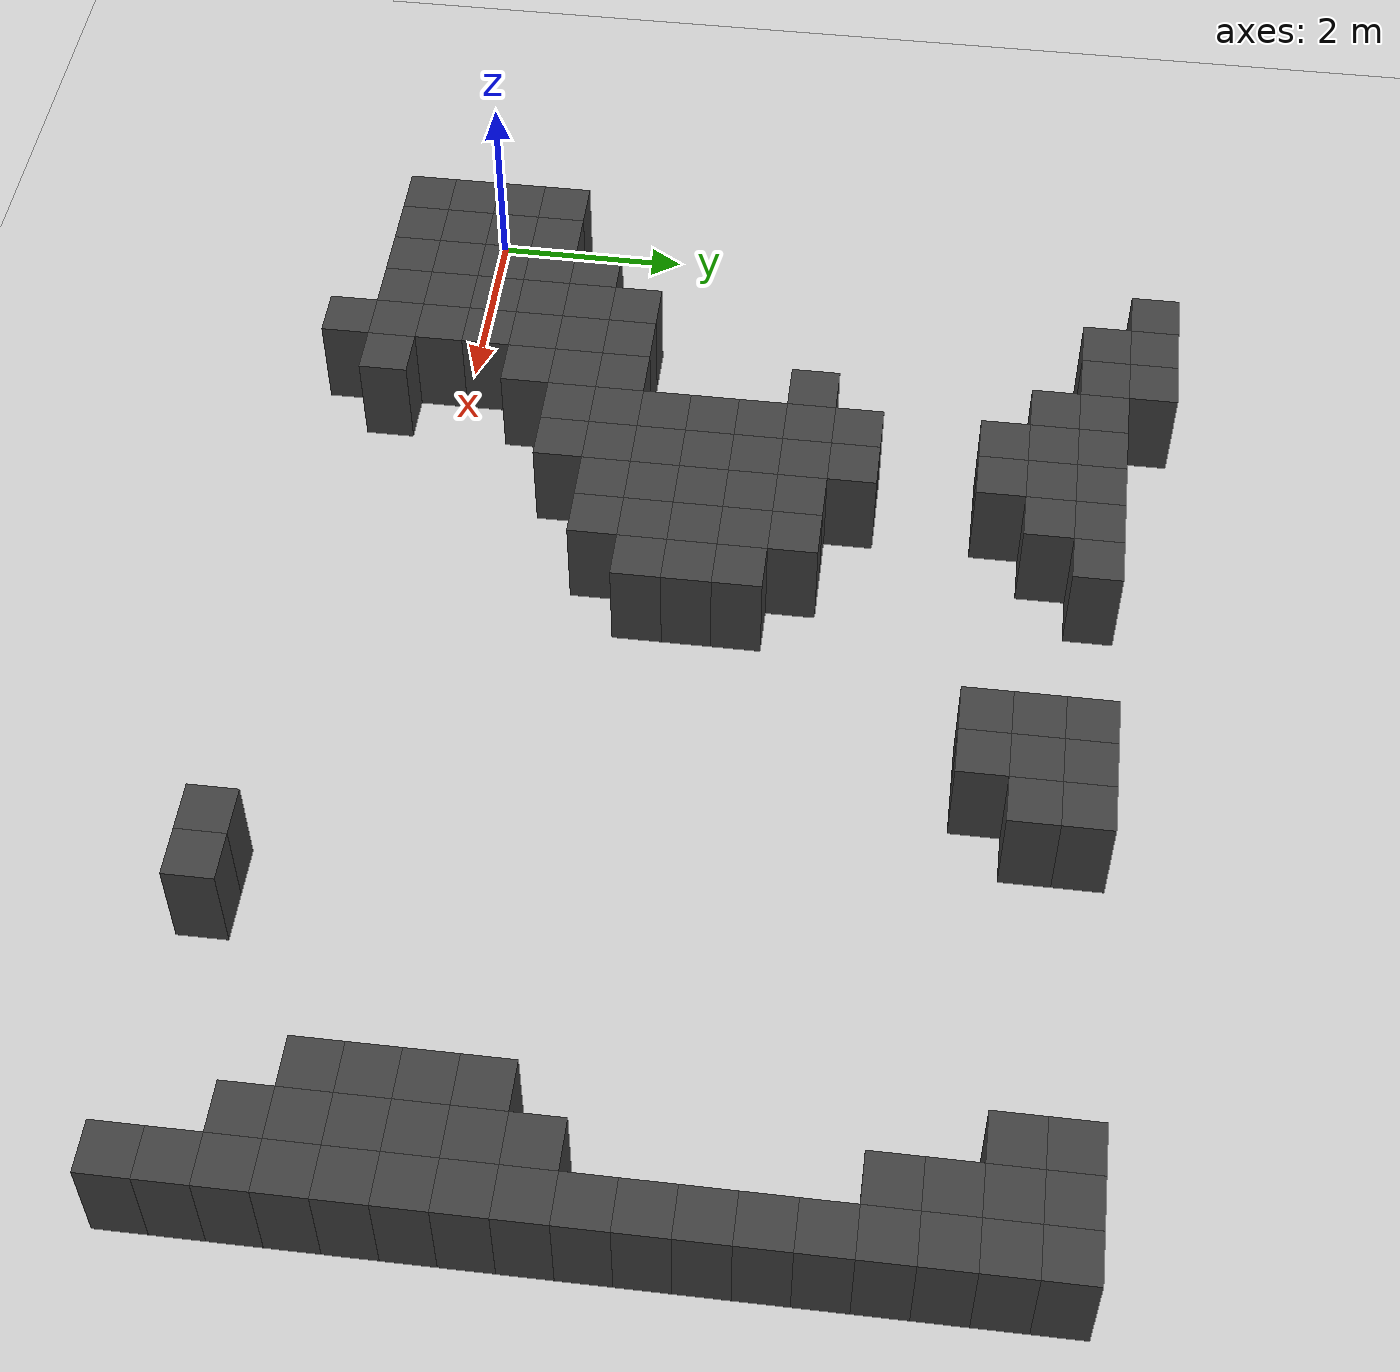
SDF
<sdf version="1.7">
 <world name="map_9061">
  <model name="ground_plane">
   <static>true</static>
   <link name="link">
    <collision name="collision">
     <geometry><plane><normal>0 0 1</normal><size>200 200</size></plane></geometry>
    </collision>
    <visual name="visual">
     <geometry><plane><normal>0 0 1</normal><size>200 200</size></plane></geometry>
     <material><ambient>0.8 0.8 0.8 1</ambient><diffuse>0.8 0.8 0.8 1</diffuse></material>
    </visual>
   </link>
  </model>
  <model name="maze_environment">
   <static>true</static>
   <link name="wall_192">
    <pose>1.250 7.250 0.500 0 0 0</pose>
    <collision name="col"><geometry><box><size>0.5 0.5 1.0</size></box></geometry></collision>
    <visual name="vis">
     <geometry><box><size>0.5 0.5 1.0</size></box></geometry>
     <material><ambient>0.15 0.15 0.15 1</ambient><diffuse>0.25 0.25 0.25 1</diffuse></material>
    </visual>
   </link>
   <link name="wall_193">
    <pose>1.750 7.250 0.500 0 0 0</pose>
    <collision name="col"><geometry><box><size>0.5 0.5 1.0</size></box></geometry></collision>
    <visual name="vis">
     <geometry><box><size>0.5 0.5 1.0</size></box></geometry>
     <material><ambient>0.15 0.15 0.15 1</ambient><diffuse>0.25 0.25 0.25 1</diffuse></material>
    </visual>
   </link>
   <link name="wall_194">
    <pose>2.250 7.250 0.500 0 0 0</pose>
    <collision name="col"><geometry><box><size>0.5 0.5 1.0</size></box></geometry></collision>
    <visual name="vis">
     <geometry><box><size>0.5 0.5 1.0</size></box></geometry>
     <material><ambient>0.15 0.15 0.15 1</ambient><diffuse>0.25 0.25 0.25 1</diffuse></material>
    </visual>
   </link>
   <link name="wall_206">
    <pose>1.750 6.750 0.500 0 0 0</pose>
    <collision name="col"><geometry><box><size>0.5 0.5 1.0</size></box></geometry></collision>
    <visual name="vis">
     <geometry><box><size>0.5 0.5 1.0</size></box></geometry>
     <material><ambient>0.15 0.15 0.15 1</ambient><diffuse>0.25 0.25 0.25 1</diffuse></material>
    </visual>
   </link>
   <link name="wall_207">
    <pose>2.250 6.750 0.500 0 0 0</pose>
    <collision name="col"><geometry><box><size>0.5 0.5 1.0</size></box></geometry></collision>
    <visual name="vis">
     <geometry><box><size>0.5 0.5 1.0</size></box></geometry>
     <material><ambient>0.15 0.15 0.15 1</ambient><diffuse>0.25 0.25 0.25 1</diffuse></material>
    </visual>
   </link>
   <link name="wall_208">
    <pose>2.750 6.750 0.500 0 0 0</pose>
    <collision name="col"><geometry><box><size>0.5 0.5 1.0</size></box></geometry></collision>
    <visual name="vis">
     <geometry><box><size>0.5 0.5 1.0</size></box></geometry>
     <material><ambient>0.15 0.15 0.15 1</ambient><diffuse>0.25 0.25 0.25 1</diffuse></material>
    </visual>
   </link>
   <link name="wall_209">
    <pose>3.250 6.750 0.500 0 0 0</pose>
    <collision name="col"><geometry><box><size>0.5 0.5 1.0</size></box></geometry></collision>
    <visual name="vis">
     <geometry><box><size>0.5 0.5 1.0</size></box></geometry>
     <material><ambient>0.15 0.15 0.15 1</ambient><diffuse>0.25 0.25 0.25 1</diffuse></material>
    </visual>
   </link>
   <link name="wall_210">
    <pose>3.750 6.750 0.500 0 0 0</pose>
    <collision name="col"><geometry><box><size>0.5 0.5 1.0</size></box></geometry></collision>
    <visual name="vis">
     <geometry><box><size>0.5 0.5 1.0</size></box></geometry>
     <material><ambient>0.15 0.15 0.15 1</ambient><diffuse>0.25 0.25 0.25 1</diffuse></material>
    </visual>
   </link>
   <link name="wall_211">
    <pose>4.250 6.750 0.500 0 0 0</pose>
    <collision name="col"><geometry><box><size>0.5 0.5 1.0</size></box></geometry></collision>
    <visual name="vis">
     <geometry><box><size>0.5 0.5 1.0</size></box></geometry>
     <material><ambient>0.15 0.15 0.15 1</ambient><diffuse>0.25 0.25 0.25 1</diffuse></material>
    </visual>
   </link>
   <link name="wall_212">
    <pose>4.750 6.750 0.500 0 0 0</pose>
    <collision name="col"><geometry><box><size>0.5 0.5 1.0</size></box></geometry></collision>
    <visual name="vis">
     <geometry><box><size>0.5 0.5 1.0</size></box></geometry>
     <material><ambient>0.15 0.15 0.15 1</ambient><diffuse>0.25 0.25 0.25 1</diffuse></material>
    </visual>
   </link>
   <link name="wall_213">
    <pose>6.750 6.750 0.500 0 0 0</pose>
    <collision name="col"><geometry><box><size>0.5 0.5 1.0</size></box></geometry></collision>
    <visual name="vis">
     <geometry><box><size>0.5 0.5 1.0</size></box></geometry>
     <material><ambient>0.15 0.15 0.15 1</ambient><diffuse>0.25 0.25 0.25 1</diffuse></material>
    </visual>
   </link>
   <link name="wall_214">
    <pose>7.250 6.750 0.500 0 0 0</pose>
    <collision name="col"><geometry><box><size>0.5 0.5 1.0</size></box></geometry></collision>
    <visual name="vis">
     <geometry><box><size>0.5 0.5 1.0</size></box></geometry>
     <material><ambient>0.15 0.15 0.15 1</ambient><diffuse>0.25 0.25 0.25 1</diffuse></material>
    </visual>
   </link>
   <link name="wall_215">
    <pose>7.750 6.750 0.500 0 0 0</pose>
    <collision name="col"><geometry><box><size>0.5 0.5 1.0</size></box></geometry></collision>
    <visual name="vis">
     <geometry><box><size>0.5 0.5 1.0</size></box></geometry>
     <material><ambient>0.15 0.15 0.15 1</ambient><diffuse>0.25 0.25 0.25 1</diffuse></material>
    </visual>
   </link>
   <link name="wall_216">
    <pose>11.250 6.750 0.500 0 0 0</pose>
    <collision name="col"><geometry><box><size>0.5 0.5 1.0</size></box></geometry></collision>
    <visual name="vis">
     <geometry><box><size>0.5 0.5 1.0</size></box></geometry>
     <material><ambient>0.15 0.15 0.15 1</ambient><diffuse>0.25 0.25 0.25 1</diffuse></material>
    </visual>
   </link>
   <link name="wall_217">
    <pose>11.750 6.750 0.500 0 0 0</pose>
    <collision name="col"><geometry><box><size>0.5 0.5 1.0</size></box></geometry></collision>
    <visual name="vis">
     <geometry><box><size>0.5 0.5 1.0</size></box></geometry>
     <material><ambient>0.15 0.15 0.15 1</ambient><diffuse>0.25 0.25 0.25 1</diffuse></material>
    </visual>
   </link>
   <link name="wall_218">
    <pose>12.250 6.750 0.500 0 0 0</pose>
    <collision name="col"><geometry><box><size>0.5 0.5 1.0</size></box></geometry></collision>
    <visual name="vis">
     <geometry><box><size>0.5 0.5 1.0</size></box></geometry>
     <material><ambient>0.15 0.15 0.15 1</ambient><diffuse>0.25 0.25 0.25 1</diffuse></material>
    </visual>
   </link>
   <link name="wall_223">
    <pose>2.750 6.250 0.500 0 0 0</pose>
    <collision name="col"><geometry><box><size>0.5 0.5 1.0</size></box></geometry></collision>
    <visual name="vis">
     <geometry><box><size>0.5 0.5 1.0</size></box></geometry>
     <material><ambient>0.15 0.15 0.15 1</ambient><diffuse>0.25 0.25 0.25 1</diffuse></material>
    </visual>
   </link>
   <link name="wall_224">
    <pose>3.250 6.250 0.500 0 0 0</pose>
    <collision name="col"><geometry><box><size>0.5 0.5 1.0</size></box></geometry></collision>
    <visual name="vis">
     <geometry><box><size>0.5 0.5 1.0</size></box></geometry>
     <material><ambient>0.15 0.15 0.15 1</ambient><diffuse>0.25 0.25 0.25 1</diffuse></material>
    </visual>
   </link>
   <link name="wall_225">
    <pose>3.750 6.250 0.500 0 0 0</pose>
    <collision name="col"><geometry><box><size>0.5 0.5 1.0</size></box></geometry></collision>
    <visual name="vis">
     <geometry><box><size>0.5 0.5 1.0</size></box></geometry>
     <material><ambient>0.15 0.15 0.15 1</ambient><diffuse>0.25 0.25 0.25 1</diffuse></material>
    </visual>
   </link>
   <link name="wall_226">
    <pose>4.250 6.250 0.500 0 0 0</pose>
    <collision name="col"><geometry><box><size>0.5 0.5 1.0</size></box></geometry></collision>
    <visual name="vis">
     <geometry><box><size>0.5 0.5 1.0</size></box></geometry>
     <material><ambient>0.15 0.15 0.15 1</ambient><diffuse>0.25 0.25 0.25 1</diffuse></material>
    </visual>
   </link>
   <link name="wall_227">
    <pose>6.750 6.250 0.500 0 0 0</pose>
    <collision name="col"><geometry><box><size>0.5 0.5 1.0</size></box></geometry></collision>
    <visual name="vis">
     <geometry><box><size>0.5 0.5 1.0</size></box></geometry>
     <material><ambient>0.15 0.15 0.15 1</ambient><diffuse>0.25 0.25 0.25 1</diffuse></material>
    </visual>
   </link>
   <link name="wall_228">
    <pose>7.250 6.250 0.500 0 0 0</pose>
    <collision name="col"><geometry><box><size>0.5 0.5 1.0</size></box></geometry></collision>
    <visual name="vis">
     <geometry><box><size>0.5 0.5 1.0</size></box></geometry>
     <material><ambient>0.15 0.15 0.15 1</ambient><diffuse>0.25 0.25 0.25 1</diffuse></material>
    </visual>
   </link>
   <link name="wall_229">
    <pose>7.750 6.250 0.500 0 0 0</pose>
    <collision name="col"><geometry><box><size>0.5 0.5 1.0</size></box></geometry></collision>
    <visual name="vis">
     <geometry><box><size>0.5 0.5 1.0</size></box></geometry>
     <material><ambient>0.15 0.15 0.15 1</ambient><diffuse>0.25 0.25 0.25 1</diffuse></material>
    </visual>
   </link>
   <link name="wall_230">
    <pose>11.250 6.250 0.500 0 0 0</pose>
    <collision name="col"><geometry><box><size>0.5 0.5 1.0</size></box></geometry></collision>
    <visual name="vis">
     <geometry><box><size>0.5 0.5 1.0</size></box></geometry>
     <material><ambient>0.15 0.15 0.15 1</ambient><diffuse>0.25 0.25 0.25 1</diffuse></material>
    </visual>
   </link>
   <link name="wall_231">
    <pose>11.750 6.250 0.500 0 0 0</pose>
    <collision name="col"><geometry><box><size>0.5 0.5 1.0</size></box></geometry></collision>
    <visual name="vis">
     <geometry><box><size>0.5 0.5 1.0</size></box></geometry>
     <material><ambient>0.15 0.15 0.15 1</ambient><diffuse>0.25 0.25 0.25 1</diffuse></material>
    </visual>
   </link>
   <link name="wall_232">
    <pose>12.250 6.250 0.500 0 0 0</pose>
    <collision name="col"><geometry><box><size>0.5 0.5 1.0</size></box></geometry></collision>
    <visual name="vis">
     <geometry><box><size>0.5 0.5 1.0</size></box></geometry>
     <material><ambient>0.15 0.15 0.15 1</ambient><diffuse>0.25 0.25 0.25 1</diffuse></material>
    </visual>
   </link>
   <link name="wall_238">
    <pose>3.250 5.750 0.500 0 0 0</pose>
    <collision name="col"><geometry><box><size>0.5 0.5 1.0</size></box></geometry></collision>
    <visual name="vis">
     <geometry><box><size>0.5 0.5 1.0</size></box></geometry>
     <material><ambient>0.15 0.15 0.15 1</ambient><diffuse>0.25 0.25 0.25 1</diffuse></material>
    </visual>
   </link>
   <link name="wall_239">
    <pose>3.750 5.750 0.500 0 0 0</pose>
    <collision name="col"><geometry><box><size>0.5 0.5 1.0</size></box></geometry></collision>
    <visual name="vis">
     <geometry><box><size>0.5 0.5 1.0</size></box></geometry>
     <material><ambient>0.15 0.15 0.15 1</ambient><diffuse>0.25 0.25 0.25 1</diffuse></material>
    </visual>
   </link>
   <link name="wall_240">
    <pose>6.750 5.750 0.500 0 0 0</pose>
    <collision name="col"><geometry><box><size>0.5 0.5 1.0</size></box></geometry></collision>
    <visual name="vis">
     <geometry><box><size>0.5 0.5 1.0</size></box></geometry>
     <material><ambient>0.15 0.15 0.15 1</ambient><diffuse>0.25 0.25 0.25 1</diffuse></material>
    </visual>
   </link>
   <link name="wall_241">
    <pose>7.250 5.750 0.500 0 0 0</pose>
    <collision name="col"><geometry><box><size>0.5 0.5 1.0</size></box></geometry></collision>
    <visual name="vis">
     <geometry><box><size>0.5 0.5 1.0</size></box></geometry>
     <material><ambient>0.15 0.15 0.15 1</ambient><diffuse>0.25 0.25 0.25 1</diffuse></material>
    </visual>
   </link>
   <link name="wall_242">
    <pose>11.750 5.750 0.500 0 0 0</pose>
    <collision name="col"><geometry><box><size>0.5 0.5 1.0</size></box></geometry></collision>
    <visual name="vis">
     <geometry><box><size>0.5 0.5 1.0</size></box></geometry>
     <material><ambient>0.15 0.15 0.15 1</ambient><diffuse>0.25 0.25 0.25 1</diffuse></material>
    </visual>
   </link>
   <link name="wall_243">
    <pose>12.250 5.750 0.500 0 0 0</pose>
    <collision name="col"><geometry><box><size>0.5 0.5 1.0</size></box></geometry></collision>
    <visual name="vis">
     <geometry><box><size>0.5 0.5 1.0</size></box></geometry>
     <material><ambient>0.15 0.15 0.15 1</ambient><diffuse>0.25 0.25 0.25 1</diffuse></material>
    </visual>
   </link>
   <link name="wall_248">
    <pose>11.750 5.250 0.500 0 0 0</pose>
    <collision name="col"><geometry><box><size>0.5 0.5 1.0</size></box></geometry></collision>
    <visual name="vis">
     <geometry><box><size>0.5 0.5 1.0</size></box></geometry>
     <material><ambient>0.15 0.15 0.15 1</ambient><diffuse>0.25 0.25 0.25 1</diffuse></material>
    </visual>
   </link>
   <link name="wall_249">
    <pose>12.250 5.250 0.500 0 0 0</pose>
    <collision name="col"><geometry><box><size>0.5 0.5 1.0</size></box></geometry></collision>
    <visual name="vis">
     <geometry><box><size>0.5 0.5 1.0</size></box></geometry>
     <material><ambient>0.15 0.15 0.15 1</ambient><diffuse>0.25 0.25 0.25 1</diffuse></material>
    </visual>
   </link>
   <link name="wall_252">
    <pose>12.250 4.750 0.500 0 0 0</pose>
    <collision name="col"><geometry><box><size>0.5 0.5 1.0</size></box></geometry></collision>
    <visual name="vis">
     <geometry><box><size>0.5 0.5 1.0</size></box></geometry>
     <material><ambient>0.15 0.15 0.15 1</ambient><diffuse>0.25 0.25 0.25 1</diffuse></material>
    </visual>
   </link>
   <link name="wall_256">
    <pose>3.250 4.250 0.500 0 0 0</pose>
    <collision name="col"><geometry><box><size>0.5 0.5 1.0</size></box></geometry></collision>
    <visual name="vis">
     <geometry><box><size>0.5 0.5 1.0</size></box></geometry>
     <material><ambient>0.15 0.15 0.15 1</ambient><diffuse>0.25 0.25 0.25 1</diffuse></material>
    </visual>
   </link>
   <link name="wall_257">
    <pose>3.750 4.250 0.500 0 0 0</pose>
    <collision name="col"><geometry><box><size>0.5 0.5 1.0</size></box></geometry></collision>
    <visual name="vis">
     <geometry><box><size>0.5 0.5 1.0</size></box></geometry>
     <material><ambient>0.15 0.15 0.15 1</ambient><diffuse>0.25 0.25 0.25 1</diffuse></material>
    </visual>
   </link>
   <link name="wall_258">
    <pose>12.250 4.250 0.500 0 0 0</pose>
    <collision name="col"><geometry><box><size>0.5 0.5 1.0</size></box></geometry></collision>
    <visual name="vis">
     <geometry><box><size>0.5 0.5 1.0</size></box></geometry>
     <material><ambient>0.15 0.15 0.15 1</ambient><diffuse>0.25 0.25 0.25 1</diffuse></material>
    </visual>
   </link>
   <link name="wall_267">
    <pose>2.750 3.750 0.500 0 0 0</pose>
    <collision name="col"><geometry><box><size>0.5 0.5 1.0</size></box></geometry></collision>
    <visual name="vis">
     <geometry><box><size>0.5 0.5 1.0</size></box></geometry>
     <material><ambient>0.15 0.15 0.15 1</ambient><diffuse>0.25 0.25 0.25 1</diffuse></material>
    </visual>
   </link>
   <link name="wall_268">
    <pose>3.250 3.750 0.500 0 0 0</pose>
    <collision name="col"><geometry><box><size>0.5 0.5 1.0</size></box></geometry></collision>
    <visual name="vis">
     <geometry><box><size>0.5 0.5 1.0</size></box></geometry>
     <material><ambient>0.15 0.15 0.15 1</ambient><diffuse>0.25 0.25 0.25 1</diffuse></material>
    </visual>
   </link>
   <link name="wall_269">
    <pose>3.750 3.750 0.500 0 0 0</pose>
    <collision name="col"><geometry><box><size>0.5 0.5 1.0</size></box></geometry></collision>
    <visual name="vis">
     <geometry><box><size>0.5 0.5 1.0</size></box></geometry>
     <material><ambient>0.15 0.15 0.15 1</ambient><diffuse>0.25 0.25 0.25 1</diffuse></material>
    </visual>
   </link>
   <link name="wall_270">
    <pose>4.250 3.750 0.500 0 0 0</pose>
    <collision name="col"><geometry><box><size>0.5 0.5 1.0</size></box></geometry></collision>
    <visual name="vis">
     <geometry><box><size>0.5 0.5 1.0</size></box></geometry>
     <material><ambient>0.15 0.15 0.15 1</ambient><diffuse>0.25 0.25 0.25 1</diffuse></material>
    </visual>
   </link>
   <link name="wall_271">
    <pose>4.750 3.750 0.500 0 0 0</pose>
    <collision name="col"><geometry><box><size>0.5 0.5 1.0</size></box></geometry></collision>
    <visual name="vis">
     <geometry><box><size>0.5 0.5 1.0</size></box></geometry>
     <material><ambient>0.15 0.15 0.15 1</ambient><diffuse>0.25 0.25 0.25 1</diffuse></material>
    </visual>
   </link>
   <link name="wall_272">
    <pose>12.250 3.750 0.500 0 0 0</pose>
    <collision name="col"><geometry><box><size>0.5 0.5 1.0</size></box></geometry></collision>
    <visual name="vis">
     <geometry><box><size>0.5 0.5 1.0</size></box></geometry>
     <material><ambient>0.15 0.15 0.15 1</ambient><diffuse>0.25 0.25 0.25 1</diffuse></material>
    </visual>
   </link>
   <link name="wall_286">
    <pose>3.250 3.250 0.500 0 0 0</pose>
    <collision name="col"><geometry><box><size>0.5 0.5 1.0</size></box></geometry></collision>
    <visual name="vis">
     <geometry><box><size>0.5 0.5 1.0</size></box></geometry>
     <material><ambient>0.15 0.15 0.15 1</ambient><diffuse>0.25 0.25 0.25 1</diffuse></material>
    </visual>
   </link>
   <link name="wall_287">
    <pose>3.750 3.250 0.500 0 0 0</pose>
    <collision name="col"><geometry><box><size>0.5 0.5 1.0</size></box></geometry></collision>
    <visual name="vis">
     <geometry><box><size>0.5 0.5 1.0</size></box></geometry>
     <material><ambient>0.15 0.15 0.15 1</ambient><diffuse>0.25 0.25 0.25 1</diffuse></material>
    </visual>
   </link>
   <link name="wall_288">
    <pose>4.250 3.250 0.500 0 0 0</pose>
    <collision name="col"><geometry><box><size>0.5 0.5 1.0</size></box></geometry></collision>
    <visual name="vis">
     <geometry><box><size>0.5 0.5 1.0</size></box></geometry>
     <material><ambient>0.15 0.15 0.15 1</ambient><diffuse>0.25 0.25 0.25 1</diffuse></material>
    </visual>
   </link>
   <link name="wall_289">
    <pose>4.750 3.250 0.500 0 0 0</pose>
    <collision name="col"><geometry><box><size>0.5 0.5 1.0</size></box></geometry></collision>
    <visual name="vis">
     <geometry><box><size>0.5 0.5 1.0</size></box></geometry>
     <material><ambient>0.15 0.15 0.15 1</ambient><diffuse>0.25 0.25 0.25 1</diffuse></material>
    </visual>
   </link>
   <link name="wall_290">
    <pose>5.250 3.250 0.500 0 0 0</pose>
    <collision name="col"><geometry><box><size>0.5 0.5 1.0</size></box></geometry></collision>
    <visual name="vis">
     <geometry><box><size>0.5 0.5 1.0</size></box></geometry>
     <material><ambient>0.15 0.15 0.15 1</ambient><diffuse>0.25 0.25 0.25 1</diffuse></material>
    </visual>
   </link>
   <link name="wall_291">
    <pose>12.250 3.250 0.500 0 0 0</pose>
    <collision name="col"><geometry><box><size>0.5 0.5 1.0</size></box></geometry></collision>
    <visual name="vis">
     <geometry><box><size>0.5 0.5 1.0</size></box></geometry>
     <material><ambient>0.15 0.15 0.15 1</ambient><diffuse>0.25 0.25 0.25 1</diffuse></material>
    </visual>
   </link>
   <link name="wall_307">
    <pose>3.250 2.750 0.500 0 0 0</pose>
    <collision name="col"><geometry><box><size>0.5 0.5 1.0</size></box></geometry></collision>
    <visual name="vis">
     <geometry><box><size>0.5 0.5 1.0</size></box></geometry>
     <material><ambient>0.15 0.15 0.15 1</ambient><diffuse>0.25 0.25 0.25 1</diffuse></material>
    </visual>
   </link>
   <link name="wall_308">
    <pose>3.750 2.750 0.500 0 0 0</pose>
    <collision name="col"><geometry><box><size>0.5 0.5 1.0</size></box></geometry></collision>
    <visual name="vis">
     <geometry><box><size>0.5 0.5 1.0</size></box></geometry>
     <material><ambient>0.15 0.15 0.15 1</ambient><diffuse>0.25 0.25 0.25 1</diffuse></material>
    </visual>
   </link>
   <link name="wall_309">
    <pose>4.250 2.750 0.500 0 0 0</pose>
    <collision name="col"><geometry><box><size>0.5 0.5 1.0</size></box></geometry></collision>
    <visual name="vis">
     <geometry><box><size>0.5 0.5 1.0</size></box></geometry>
     <material><ambient>0.15 0.15 0.15 1</ambient><diffuse>0.25 0.25 0.25 1</diffuse></material>
    </visual>
   </link>
   <link name="wall_310">
    <pose>4.750 2.750 0.500 0 0 0</pose>
    <collision name="col"><geometry><box><size>0.5 0.5 1.0</size></box></geometry></collision>
    <visual name="vis">
     <geometry><box><size>0.5 0.5 1.0</size></box></geometry>
     <material><ambient>0.15 0.15 0.15 1</ambient><diffuse>0.25 0.25 0.25 1</diffuse></material>
    </visual>
   </link>
   <link name="wall_311">
    <pose>5.250 2.750 0.500 0 0 0</pose>
    <collision name="col"><geometry><box><size>0.5 0.5 1.0</size></box></geometry></collision>
    <visual name="vis">
     <geometry><box><size>0.5 0.5 1.0</size></box></geometry>
     <material><ambient>0.15 0.15 0.15 1</ambient><diffuse>0.25 0.25 0.25 1</diffuse></material>
    </visual>
   </link>
   <link name="wall_312">
    <pose>12.250 2.750 0.500 0 0 0</pose>
    <collision name="col"><geometry><box><size>0.5 0.5 1.0</size></box></geometry></collision>
    <visual name="vis">
     <geometry><box><size>0.5 0.5 1.0</size></box></geometry>
     <material><ambient>0.15 0.15 0.15 1</ambient><diffuse>0.25 0.25 0.25 1</diffuse></material>
    </visual>
   </link>
   <link name="wall_327">
    <pose>3.250 2.250 0.500 0 0 0</pose>
    <collision name="col"><geometry><box><size>0.5 0.5 1.0</size></box></geometry></collision>
    <visual name="vis">
     <geometry><box><size>0.5 0.5 1.0</size></box></geometry>
     <material><ambient>0.15 0.15 0.15 1</ambient><diffuse>0.25 0.25 0.25 1</diffuse></material>
    </visual>
   </link>
   <link name="wall_328">
    <pose>3.750 2.250 0.500 0 0 0</pose>
    <collision name="col"><geometry><box><size>0.5 0.5 1.0</size></box></geometry></collision>
    <visual name="vis">
     <geometry><box><size>0.5 0.5 1.0</size></box></geometry>
     <material><ambient>0.15 0.15 0.15 1</ambient><diffuse>0.25 0.25 0.25 1</diffuse></material>
    </visual>
   </link>
   <link name="wall_329">
    <pose>4.250 2.250 0.500 0 0 0</pose>
    <collision name="col"><geometry><box><size>0.5 0.5 1.0</size></box></geometry></collision>
    <visual name="vis">
     <geometry><box><size>0.5 0.5 1.0</size></box></geometry>
     <material><ambient>0.15 0.15 0.15 1</ambient><diffuse>0.25 0.25 0.25 1</diffuse></material>
    </visual>
   </link>
   <link name="wall_330">
    <pose>4.750 2.250 0.500 0 0 0</pose>
    <collision name="col"><geometry><box><size>0.5 0.5 1.0</size></box></geometry></collision>
    <visual name="vis">
     <geometry><box><size>0.5 0.5 1.0</size></box></geometry>
     <material><ambient>0.15 0.15 0.15 1</ambient><diffuse>0.25 0.25 0.25 1</diffuse></material>
    </visual>
   </link>
   <link name="wall_331">
    <pose>5.250 2.250 0.500 0 0 0</pose>
    <collision name="col"><geometry><box><size>0.5 0.5 1.0</size></box></geometry></collision>
    <visual name="vis">
     <geometry><box><size>0.5 0.5 1.0</size></box></geometry>
     <material><ambient>0.15 0.15 0.15 1</ambient><diffuse>0.25 0.25 0.25 1</diffuse></material>
    </visual>
   </link>
   <link name="wall_332">
    <pose>11.750 2.250 0.500 0 0 0</pose>
    <collision name="col"><geometry><box><size>0.5 0.5 1.0</size></box></geometry></collision>
    <visual name="vis">
     <geometry><box><size>0.5 0.5 1.0</size></box></geometry>
     <material><ambient>0.15 0.15 0.15 1</ambient><diffuse>0.25 0.25 0.25 1</diffuse></material>
    </visual>
   </link>
   <link name="wall_333">
    <pose>12.250 2.250 0.500 0 0 0</pose>
    <collision name="col"><geometry><box><size>0.5 0.5 1.0</size></box></geometry></collision>
    <visual name="vis">
     <geometry><box><size>0.5 0.5 1.0</size></box></geometry>
     <material><ambient>0.15 0.15 0.15 1</ambient><diffuse>0.25 0.25 0.25 1</diffuse></material>
    </visual>
   </link>
   <link name="wall_344">
    <pose>1.750 1.750 0.500 0 0 0</pose>
    <collision name="col"><geometry><box><size>0.5 0.5 1.0</size></box></geometry></collision>
    <visual name="vis">
     <geometry><box><size>0.5 0.5 1.0</size></box></geometry>
     <material><ambient>0.15 0.15 0.15 1</ambient><diffuse>0.25 0.25 0.25 1</diffuse></material>
    </visual>
   </link>
   <link name="wall_345">
    <pose>2.250 1.750 0.500 0 0 0</pose>
    <collision name="col"><geometry><box><size>0.5 0.5 1.0</size></box></geometry></collision>
    <visual name="vis">
     <geometry><box><size>0.5 0.5 1.0</size></box></geometry>
     <material><ambient>0.15 0.15 0.15 1</ambient><diffuse>0.25 0.25 0.25 1</diffuse></material>
    </visual>
   </link>
   <link name="wall_346">
    <pose>2.750 1.750 0.500 0 0 0</pose>
    <collision name="col"><geometry><box><size>0.5 0.5 1.0</size></box></geometry></collision>
    <visual name="vis">
     <geometry><box><size>0.5 0.5 1.0</size></box></geometry>
     <material><ambient>0.15 0.15 0.15 1</ambient><diffuse>0.25 0.25 0.25 1</diffuse></material>
    </visual>
   </link>
   <link name="wall_347">
    <pose>3.250 1.750 0.500 0 0 0</pose>
    <collision name="col"><geometry><box><size>0.5 0.5 1.0</size></box></geometry></collision>
    <visual name="vis">
     <geometry><box><size>0.5 0.5 1.0</size></box></geometry>
     <material><ambient>0.15 0.15 0.15 1</ambient><diffuse>0.25 0.25 0.25 1</diffuse></material>
    </visual>
   </link>
   <link name="wall_348">
    <pose>3.750 1.750 0.500 0 0 0</pose>
    <collision name="col"><geometry><box><size>0.5 0.5 1.0</size></box></geometry></collision>
    <visual name="vis">
     <geometry><box><size>0.5 0.5 1.0</size></box></geometry>
     <material><ambient>0.15 0.15 0.15 1</ambient><diffuse>0.25 0.25 0.25 1</diffuse></material>
    </visual>
   </link>
   <link name="wall_349">
    <pose>4.250 1.750 0.500 0 0 0</pose>
    <collision name="col"><geometry><box><size>0.5 0.5 1.0</size></box></geometry></collision>
    <visual name="vis">
     <geometry><box><size>0.5 0.5 1.0</size></box></geometry>
     <material><ambient>0.15 0.15 0.15 1</ambient><diffuse>0.25 0.25 0.25 1</diffuse></material>
    </visual>
   </link>
   <link name="wall_350">
    <pose>4.750 1.750 0.500 0 0 0</pose>
    <collision name="col"><geometry><box><size>0.5 0.5 1.0</size></box></geometry></collision>
    <visual name="vis">
     <geometry><box><size>0.5 0.5 1.0</size></box></geometry>
     <material><ambient>0.15 0.15 0.15 1</ambient><diffuse>0.25 0.25 0.25 1</diffuse></material>
    </visual>
   </link>
   <link name="wall_351">
    <pose>11.250 1.750 0.500 0 0 0</pose>
    <collision name="col"><geometry><box><size>0.5 0.5 1.0</size></box></geometry></collision>
    <visual name="vis">
     <geometry><box><size>0.5 0.5 1.0</size></box></geometry>
     <material><ambient>0.15 0.15 0.15 1</ambient><diffuse>0.25 0.25 0.25 1</diffuse></material>
    </visual>
   </link>
   <link name="wall_352">
    <pose>11.750 1.750 0.500 0 0 0</pose>
    <collision name="col"><geometry><box><size>0.5 0.5 1.0</size></box></geometry></collision>
    <visual name="vis">
     <geometry><box><size>0.5 0.5 1.0</size></box></geometry>
     <material><ambient>0.15 0.15 0.15 1</ambient><diffuse>0.25 0.25 0.25 1</diffuse></material>
    </visual>
   </link>
   <link name="wall_353">
    <pose>12.250 1.750 0.500 0 0 0</pose>
    <collision name="col"><geometry><box><size>0.5 0.5 1.0</size></box></geometry></collision>
    <visual name="vis">
     <geometry><box><size>0.5 0.5 1.0</size></box></geometry>
     <material><ambient>0.15 0.15 0.15 1</ambient><diffuse>0.25 0.25 0.25 1</diffuse></material>
    </visual>
   </link>
   <link name="wall_363">
    <pose>1.250 1.250 0.500 0 0 0</pose>
    <collision name="col"><geometry><box><size>0.5 0.5 1.0</size></box></geometry></collision>
    <visual name="vis">
     <geometry><box><size>0.5 0.5 1.0</size></box></geometry>
     <material><ambient>0.15 0.15 0.15 1</ambient><diffuse>0.25 0.25 0.25 1</diffuse></material>
    </visual>
   </link>
   <link name="wall_364">
    <pose>1.750 1.250 0.500 0 0 0</pose>
    <collision name="col"><geometry><box><size>0.5 0.5 1.0</size></box></geometry></collision>
    <visual name="vis">
     <geometry><box><size>0.5 0.5 1.0</size></box></geometry>
     <material><ambient>0.15 0.15 0.15 1</ambient><diffuse>0.25 0.25 0.25 1</diffuse></material>
    </visual>
   </link>
   <link name="wall_365">
    <pose>2.250 1.250 0.500 0 0 0</pose>
    <collision name="col"><geometry><box><size>0.5 0.5 1.0</size></box></geometry></collision>
    <visual name="vis">
     <geometry><box><size>0.5 0.5 1.0</size></box></geometry>
     <material><ambient>0.15 0.15 0.15 1</ambient><diffuse>0.25 0.25 0.25 1</diffuse></material>
    </visual>
   </link>
   <link name="wall_366">
    <pose>2.750 1.250 0.500 0 0 0</pose>
    <collision name="col"><geometry><box><size>0.5 0.5 1.0</size></box></geometry></collision>
    <visual name="vis">
     <geometry><box><size>0.5 0.5 1.0</size></box></geometry>
     <material><ambient>0.15 0.15 0.15 1</ambient><diffuse>0.25 0.25 0.25 1</diffuse></material>
    </visual>
   </link>
   <link name="wall_367">
    <pose>3.250 1.250 0.500 0 0 0</pose>
    <collision name="col"><geometry><box><size>0.5 0.5 1.0</size></box></geometry></collision>
    <visual name="vis">
     <geometry><box><size>0.5 0.5 1.0</size></box></geometry>
     <material><ambient>0.15 0.15 0.15 1</ambient><diffuse>0.25 0.25 0.25 1</diffuse></material>
    </visual>
   </link>
   <link name="wall_368">
    <pose>3.750 1.250 0.500 0 0 0</pose>
    <collision name="col"><geometry><box><size>0.5 0.5 1.0</size></box></geometry></collision>
    <visual name="vis">
     <geometry><box><size>0.5 0.5 1.0</size></box></geometry>
     <material><ambient>0.15 0.15 0.15 1</ambient><diffuse>0.25 0.25 0.25 1</diffuse></material>
    </visual>
   </link>
   <link name="wall_369">
    <pose>11.250 1.250 0.500 0 0 0</pose>
    <collision name="col"><geometry><box><size>0.5 0.5 1.0</size></box></geometry></collision>
    <visual name="vis">
     <geometry><box><size>0.5 0.5 1.0</size></box></geometry>
     <material><ambient>0.15 0.15 0.15 1</ambient><diffuse>0.25 0.25 0.25 1</diffuse></material>
    </visual>
   </link>
   <link name="wall_370">
    <pose>11.750 1.250 0.500 0 0 0</pose>
    <collision name="col"><geometry><box><size>0.5 0.5 1.0</size></box></geometry></collision>
    <visual name="vis">
     <geometry><box><size>0.5 0.5 1.0</size></box></geometry>
     <material><ambient>0.15 0.15 0.15 1</ambient><diffuse>0.25 0.25 0.25 1</diffuse></material>
    </visual>
   </link>
   <link name="wall_371">
    <pose>12.250 1.250 0.500 0 0 0</pose>
    <collision name="col"><geometry><box><size>0.5 0.5 1.0</size></box></geometry></collision>
    <visual name="vis">
     <geometry><box><size>0.5 0.5 1.0</size></box></geometry>
     <material><ambient>0.15 0.15 0.15 1</ambient><diffuse>0.25 0.25 0.25 1</diffuse></material>
    </visual>
   </link>
   <link name="wall_382">
    <pose>0.250 0.750 0.500 0 0 0</pose>
    <collision name="col"><geometry><box><size>0.5 0.5 1.0</size></box></geometry></collision>
    <visual name="vis">
     <geometry><box><size>0.5 0.5 1.0</size></box></geometry>
     <material><ambient>0.15 0.15 0.15 1</ambient><diffuse>0.25 0.25 0.25 1</diffuse></material>
    </visual>
   </link>
   <link name="wall_383">
    <pose>0.750 0.750 0.500 0 0 0</pose>
    <collision name="col"><geometry><box><size>0.5 0.5 1.0</size></box></geometry></collision>
    <visual name="vis">
     <geometry><box><size>0.5 0.5 1.0</size></box></geometry>
     <material><ambient>0.15 0.15 0.15 1</ambient><diffuse>0.25 0.25 0.25 1</diffuse></material>
    </visual>
   </link>
   <link name="wall_384">
    <pose>1.250 0.750 0.500 0 0 0</pose>
    <collision name="col"><geometry><box><size>0.5 0.5 1.0</size></box></geometry></collision>
    <visual name="vis">
     <geometry><box><size>0.5 0.5 1.0</size></box></geometry>
     <material><ambient>0.15 0.15 0.15 1</ambient><diffuse>0.25 0.25 0.25 1</diffuse></material>
    </visual>
   </link>
   <link name="wall_385">
    <pose>1.750 0.750 0.500 0 0 0</pose>
    <collision name="col"><geometry><box><size>0.5 0.5 1.0</size></box></geometry></collision>
    <visual name="vis">
     <geometry><box><size>0.5 0.5 1.0</size></box></geometry>
     <material><ambient>0.15 0.15 0.15 1</ambient><diffuse>0.25 0.25 0.25 1</diffuse></material>
    </visual>
   </link>
   <link name="wall_386">
    <pose>2.250 0.750 0.500 0 0 0</pose>
    <collision name="col"><geometry><box><size>0.5 0.5 1.0</size></box></geometry></collision>
    <visual name="vis">
     <geometry><box><size>0.5 0.5 1.0</size></box></geometry>
     <material><ambient>0.15 0.15 0.15 1</ambient><diffuse>0.25 0.25 0.25 1</diffuse></material>
    </visual>
   </link>
   <link name="wall_387">
    <pose>2.750 0.750 0.500 0 0 0</pose>
    <collision name="col"><geometry><box><size>0.5 0.5 1.0</size></box></geometry></collision>
    <visual name="vis">
     <geometry><box><size>0.5 0.5 1.0</size></box></geometry>
     <material><ambient>0.15 0.15 0.15 1</ambient><diffuse>0.25 0.25 0.25 1</diffuse></material>
    </visual>
   </link>
   <link name="wall_388">
    <pose>11.250 0.750 0.500 0 0 0</pose>
    <collision name="col"><geometry><box><size>0.5 0.5 1.0</size></box></geometry></collision>
    <visual name="vis">
     <geometry><box><size>0.5 0.5 1.0</size></box></geometry>
     <material><ambient>0.15 0.15 0.15 1</ambient><diffuse>0.25 0.25 0.25 1</diffuse></material>
    </visual>
   </link>
   <link name="wall_389">
    <pose>11.750 0.750 0.500 0 0 0</pose>
    <collision name="col"><geometry><box><size>0.5 0.5 1.0</size></box></geometry></collision>
    <visual name="vis">
     <geometry><box><size>0.5 0.5 1.0</size></box></geometry>
     <material><ambient>0.15 0.15 0.15 1</ambient><diffuse>0.25 0.25 0.25 1</diffuse></material>
    </visual>
   </link>
   <link name="wall_390">
    <pose>12.250 0.750 0.500 0 0 0</pose>
    <collision name="col"><geometry><box><size>0.5 0.5 1.0</size></box></geometry></collision>
    <visual name="vis">
     <geometry><box><size>0.5 0.5 1.0</size></box></geometry>
     <material><ambient>0.15 0.15 0.15 1</ambient><diffuse>0.25 0.25 0.25 1</diffuse></material>
    </visual>
   </link>
   <link name="wall_401">
    <pose>0.250 0.250 0.500 0 0 0</pose>
    <collision name="col"><geometry><box><size>0.5 0.5 1.0</size></box></geometry></collision>
    <visual name="vis">
     <geometry><box><size>0.5 0.5 1.0</size></box></geometry>
     <material><ambient>0.15 0.15 0.15 1</ambient><diffuse>0.25 0.25 0.25 1</diffuse></material>
    </visual>
   </link>
   <link name="wall_402">
    <pose>0.750 0.250 0.500 0 0 0</pose>
    <collision name="col"><geometry><box><size>0.5 0.5 1.0</size></box></geometry></collision>
    <visual name="vis">
     <geometry><box><size>0.5 0.5 1.0</size></box></geometry>
     <material><ambient>0.15 0.15 0.15 1</ambient><diffuse>0.25 0.25 0.25 1</diffuse></material>
    </visual>
   </link>
   <link name="wall_403">
    <pose>1.250 0.250 0.500 0 0 0</pose>
    <collision name="col"><geometry><box><size>0.5 0.5 1.0</size></box></geometry></collision>
    <visual name="vis">
     <geometry><box><size>0.5 0.5 1.0</size></box></geometry>
     <material><ambient>0.15 0.15 0.15 1</ambient><diffuse>0.25 0.25 0.25 1</diffuse></material>
    </visual>
   </link>
   <link name="wall_404">
    <pose>1.750 0.250 0.500 0 0 0</pose>
    <collision name="col"><geometry><box><size>0.5 0.5 1.0</size></box></geometry></collision>
    <visual name="vis">
     <geometry><box><size>0.5 0.5 1.0</size></box></geometry>
     <material><ambient>0.15 0.15 0.15 1</ambient><diffuse>0.25 0.25 0.25 1</diffuse></material>
    </visual>
   </link>
   <link name="wall_405">
    <pose>2.250 0.250 0.500 0 0 0</pose>
    <collision name="col"><geometry><box><size>0.5 0.5 1.0</size></box></geometry></collision>
    <visual name="vis">
     <geometry><box><size>0.5 0.5 1.0</size></box></geometry>
     <material><ambient>0.15 0.15 0.15 1</ambient><diffuse>0.25 0.25 0.25 1</diffuse></material>
    </visual>
   </link>
   <link name="wall_406">
    <pose>11.250 0.250 0.500 0 0 0</pose>
    <collision name="col"><geometry><box><size>0.5 0.5 1.0</size></box></geometry></collision>
    <visual name="vis">
     <geometry><box><size>0.5 0.5 1.0</size></box></geometry>
     <material><ambient>0.15 0.15 0.15 1</ambient><diffuse>0.25 0.25 0.25 1</diffuse></material>
    </visual>
   </link>
   <link name="wall_407">
    <pose>11.750 0.250 0.500 0 0 0</pose>
    <collision name="col"><geometry><box><size>0.5 0.5 1.0</size></box></geometry></collision>
    <visual name="vis">
     <geometry><box><size>0.5 0.5 1.0</size></box></geometry>
     <material><ambient>0.15 0.15 0.15 1</ambient><diffuse>0.25 0.25 0.25 1</diffuse></material>
    </visual>
   </link>
   <link name="wall_408">
    <pose>12.250 0.250 0.500 0 0 0</pose>
    <collision name="col"><geometry><box><size>0.5 0.5 1.0</size></box></geometry></collision>
    <visual name="vis">
     <geometry><box><size>0.5 0.5 1.0</size></box></geometry>
     <material><ambient>0.15 0.15 0.15 1</ambient><diffuse>0.25 0.25 0.25 1</diffuse></material>
    </visual>
   </link>
   <link name="wall_419">
    <pose>0.250 -0.250 0.500 0 0 0</pose>
    <collision name="col"><geometry><box><size>0.5 0.5 1.0</size></box></geometry></collision>
    <visual name="vis">
     <geometry><box><size>0.5 0.5 1.0</size></box></geometry>
     <material><ambient>0.15 0.15 0.15 1</ambient><diffuse>0.25 0.25 0.25 1</diffuse></material>
    </visual>
   </link>
   <link name="wall_420">
    <pose>0.750 -0.250 0.500 0 0 0</pose>
    <collision name="col"><geometry><box><size>0.5 0.5 1.0</size></box></geometry></collision>
    <visual name="vis">
     <geometry><box><size>0.5 0.5 1.0</size></box></geometry>
     <material><ambient>0.15 0.15 0.15 1</ambient><diffuse>0.25 0.25 0.25 1</diffuse></material>
    </visual>
   </link>
   <link name="wall_421">
    <pose>1.250 -0.250 0.500 0 0 0</pose>
    <collision name="col"><geometry><box><size>0.5 0.5 1.0</size></box></geometry></collision>
    <visual name="vis">
     <geometry><box><size>0.5 0.5 1.0</size></box></geometry>
     <material><ambient>0.15 0.15 0.15 1</ambient><diffuse>0.25 0.25 0.25 1</diffuse></material>
    </visual>
   </link>
   <link name="wall_422">
    <pose>1.750 -0.250 0.500 0 0 0</pose>
    <collision name="col"><geometry><box><size>0.5 0.5 1.0</size></box></geometry></collision>
    <visual name="vis">
     <geometry><box><size>0.5 0.5 1.0</size></box></geometry>
     <material><ambient>0.15 0.15 0.15 1</ambient><diffuse>0.25 0.25 0.25 1</diffuse></material>
    </visual>
   </link>
   <link name="wall_423">
    <pose>2.250 -0.250 0.500 0 0 0</pose>
    <collision name="col"><geometry><box><size>0.5 0.5 1.0</size></box></geometry></collision>
    <visual name="vis">
     <geometry><box><size>0.5 0.5 1.0</size></box></geometry>
     <material><ambient>0.15 0.15 0.15 1</ambient><diffuse>0.25 0.25 0.25 1</diffuse></material>
    </visual>
   </link>
   <link name="wall_424">
    <pose>11.750 -0.250 0.500 0 0 0</pose>
    <collision name="col"><geometry><box><size>0.5 0.5 1.0</size></box></geometry></collision>
    <visual name="vis">
     <geometry><box><size>0.5 0.5 1.0</size></box></geometry>
     <material><ambient>0.15 0.15 0.15 1</ambient><diffuse>0.25 0.25 0.25 1</diffuse></material>
    </visual>
   </link>
   <link name="wall_425">
    <pose>12.250 -0.250 0.500 0 0 0</pose>
    <collision name="col"><geometry><box><size>0.5 0.5 1.0</size></box></geometry></collision>
    <visual name="vis">
     <geometry><box><size>0.5 0.5 1.0</size></box></geometry>
     <material><ambient>0.15 0.15 0.15 1</ambient><diffuse>0.25 0.25 0.25 1</diffuse></material>
    </visual>
   </link>
   <link name="wall_439">
    <pose>0.250 -0.750 0.500 0 0 0</pose>
    <collision name="col"><geometry><box><size>0.5 0.5 1.0</size></box></geometry></collision>
    <visual name="vis">
     <geometry><box><size>0.5 0.5 1.0</size></box></geometry>
     <material><ambient>0.15 0.15 0.15 1</ambient><diffuse>0.25 0.25 0.25 1</diffuse></material>
    </visual>
   </link>
   <link name="wall_440">
    <pose>0.750 -0.750 0.500 0 0 0</pose>
    <collision name="col"><geometry><box><size>0.5 0.5 1.0</size></box></geometry></collision>
    <visual name="vis">
     <geometry><box><size>0.5 0.5 1.0</size></box></geometry>
     <material><ambient>0.15 0.15 0.15 1</ambient><diffuse>0.25 0.25 0.25 1</diffuse></material>
    </visual>
   </link>
   <link name="wall_441">
    <pose>1.250 -0.750 0.500 0 0 0</pose>
    <collision name="col"><geometry><box><size>0.5 0.5 1.0</size></box></geometry></collision>
    <visual name="vis">
     <geometry><box><size>0.5 0.5 1.0</size></box></geometry>
     <material><ambient>0.15 0.15 0.15 1</ambient><diffuse>0.25 0.25 0.25 1</diffuse></material>
    </visual>
   </link>
   <link name="wall_442">
    <pose>1.750 -0.750 0.500 0 0 0</pose>
    <collision name="col"><geometry><box><size>0.5 0.5 1.0</size></box></geometry></collision>
    <visual name="vis">
     <geometry><box><size>0.5 0.5 1.0</size></box></geometry>
     <material><ambient>0.15 0.15 0.15 1</ambient><diffuse>0.25 0.25 0.25 1</diffuse></material>
    </visual>
   </link>
   <link name="wall_443">
    <pose>2.250 -0.750 0.500 0 0 0</pose>
    <collision name="col"><geometry><box><size>0.5 0.5 1.0</size></box></geometry></collision>
    <visual name="vis">
     <geometry><box><size>0.5 0.5 1.0</size></box></geometry>
     <material><ambient>0.15 0.15 0.15 1</ambient><diffuse>0.25 0.25 0.25 1</diffuse></material>
    </visual>
   </link>
   <link name="wall_444">
    <pose>2.750 -0.750 0.500 0 0 0</pose>
    <collision name="col"><geometry><box><size>0.5 0.5 1.0</size></box></geometry></collision>
    <visual name="vis">
     <geometry><box><size>0.5 0.5 1.0</size></box></geometry>
     <material><ambient>0.15 0.15 0.15 1</ambient><diffuse>0.25 0.25 0.25 1</diffuse></material>
    </visual>
   </link>
   <link name="wall_445">
    <pose>12.250 -0.750 0.500 0 0 0</pose>
    <collision name="col"><geometry><box><size>0.5 0.5 1.0</size></box></geometry></collision>
    <visual name="vis">
     <geometry><box><size>0.5 0.5 1.0</size></box></geometry>
     <material><ambient>0.15 0.15 0.15 1</ambient><diffuse>0.25 0.25 0.25 1</diffuse></material>
    </visual>
   </link>
   <link name="wall_462">
    <pose>2.250 -1.250 0.500 0 0 0</pose>
    <collision name="col"><geometry><box><size>0.5 0.5 1.0</size></box></geometry></collision>
    <visual name="vis">
     <geometry><box><size>0.5 0.5 1.0</size></box></geometry>
     <material><ambient>0.15 0.15 0.15 1</ambient><diffuse>0.25 0.25 0.25 1</diffuse></material>
    </visual>
   </link>
   <link name="wall_463">
    <pose>8.750 -1.250 0.500 0 0 0</pose>
    <collision name="col"><geometry><box><size>0.5 0.5 1.0</size></box></geometry></collision>
    <visual name="vis">
     <geometry><box><size>0.5 0.5 1.0</size></box></geometry>
     <material><ambient>0.15 0.15 0.15 1</ambient><diffuse>0.25 0.25 0.25 1</diffuse></material>
    </visual>
   </link>
   <link name="wall_464">
    <pose>9.250 -1.250 0.500 0 0 0</pose>
    <collision name="col"><geometry><box><size>0.5 0.5 1.0</size></box></geometry></collision>
    <visual name="vis">
     <geometry><box><size>0.5 0.5 1.0</size></box></geometry>
     <material><ambient>0.15 0.15 0.15 1</ambient><diffuse>0.25 0.25 0.25 1</diffuse></material>
    </visual>
   </link>
   <link name="wall_465">
    <pose>12.250 -1.250 0.500 0 0 0</pose>
    <collision name="col"><geometry><box><size>0.5 0.5 1.0</size></box></geometry></collision>
    <visual name="vis">
     <geometry><box><size>0.5 0.5 1.0</size></box></geometry>
     <material><ambient>0.15 0.15 0.15 1</ambient><diffuse>0.25 0.25 0.25 1</diffuse></material>
    </visual>
   </link>
  </model>
 </world>
</sdf>
